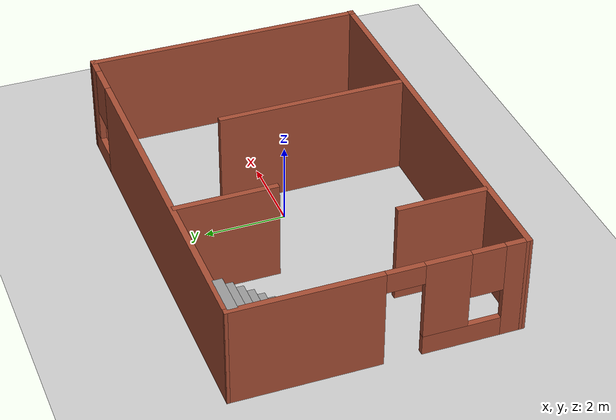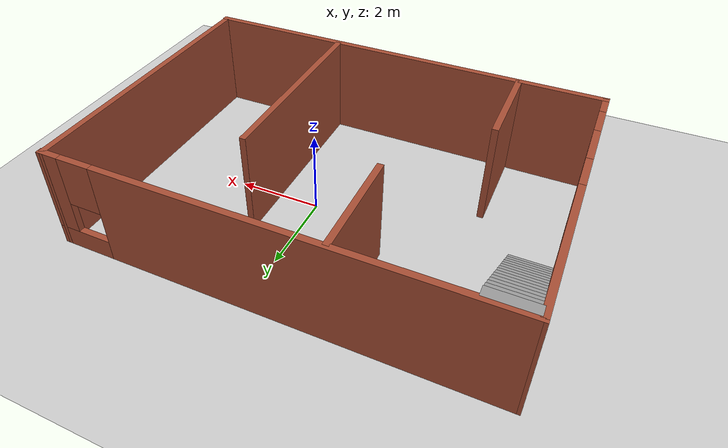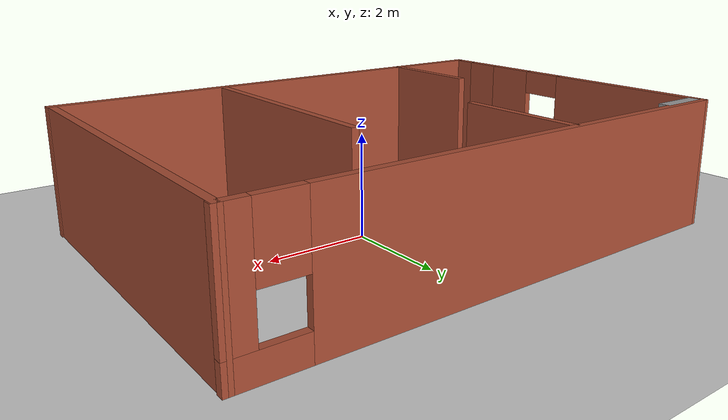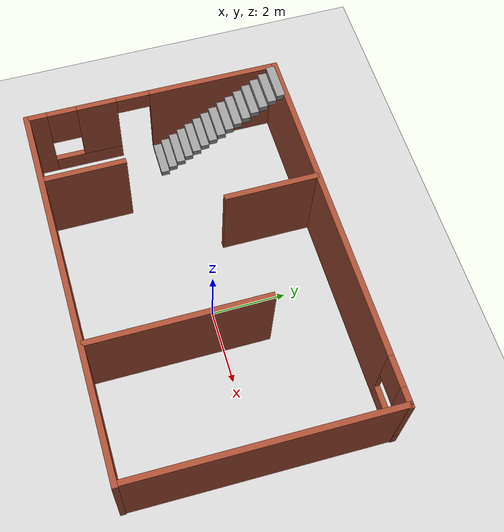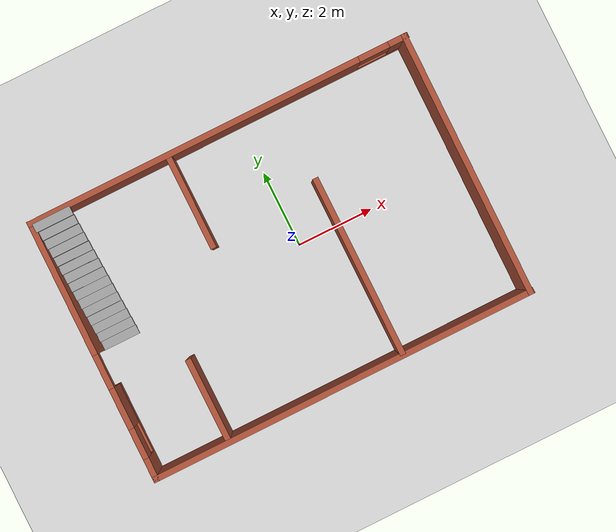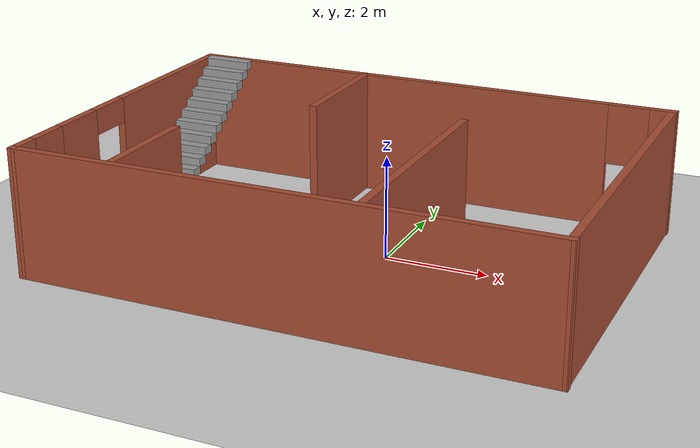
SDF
<sdf version="1.7">
 <world name="default">
  <light name="sun" type="directional">
   <pose>0 0 10 0 -0 0</pose>
   <diffuse>0.8 0.8 0.8 1</diffuse>
   <specular>0.2 0.2 0.2 1</specular>
   <attenuation>
    <range>1000</range>
    <constant>0.9</constant>
    <linear>0.01</linear>
    <quadratic>0.001</quadratic>
   </attenuation>
   <direction>-0.5 0.1 -0.9</direction>
   <spot><inner_angle>0</inner_angle><outer_angle>0</outer_angle><falloff>0</falloff></spot>
  </light>
  <model name="ground_plane">
   <static>1</static>
   <link name="link">
    <collision name="collision">
     <geometry><plane><normal>0 0 1</normal><size>100 100</size></plane></geometry>
     <surface>
      <contact><collide_bitmask>65535</collide_bitmask></contact>
      <friction><ode><mu>100</mu><mu2>50</mu2></ode></friction>
     </surface>
    </collision>
    <visual name="visual">
     <cast_shadows>0</cast_shadows>
     <geometry><plane><normal>0 0 1</normal><size>100 100</size></plane></geometry>
     <material>
      <script><uri>file://media/materials/scripts/gazebo.material</uri><name>Gazebo/Grey</name></script>
     </material>
    </visual>
   </link>
  </model>
  <gravity>0 0 -9.8</gravity>
  <magnetic_field>6e-06 2.3e-05 -4.2e-05</magnetic_field>
  <atmosphere type="adiabatic"/>
  <physics type="ode">
   <max_step_size>0.001</max_step_size>
   <real_time_factor>1</real_time_factor>
   <real_time_update_rate>1000</real_time_update_rate>
  </physics>
  <scene><ambient>0.4 0.4 0.4 1</ambient><background>0.7 0.7 0.7 1</background><shadows>1</shadows></scene>
  <spherical_coordinates>
   <surface_model>EARTH_WGS84</surface_model>
   <latitude_deg>0</latitude_deg>
   <longitude_deg>0</longitude_deg>
   <elevation>0</elevation>
   <heading_deg>0</heading_deg>
  </spherical_coordinates>
  <model name="complex_maze">
   <pose>-0.567728 -0.079374 0 0 -0 0</pose>
   <link name="Stairs_0">
    <visual name="Stairs_0_Visual_0">
     <pose>-4.49807 0.000507 0.083333 0 -0 -3.14159</pose>
     <geometry><box><size>1 0.233333 0.166667</size></box></geometry>
     <material>
      <script><uri>file://media/materials/scripts/gazebo.material</uri><name>Gazebo/Grey</name></script>
      <ambient>1 1 1 1</ambient>
     </material>
     <meta><layer>0</layer></meta>
    </visual>
    <collision name="Stairs_0_Collision_0">
     <geometry><box><size>1 0.233333 0.166667</size></box></geometry>
     <pose>-4.49807 0.000507 0.083333 0 -0 -3.14159</pose>
    </collision>
    <visual name="Stairs_0_Visual_1">
     <pose>-4.49807 0.23384 0.25 0 -0 -3.14159</pose>
     <geometry><box><size>1 0.233333 0.166667</size></box></geometry>
     <material>
      <script><uri>file://media/materials/scripts/gazebo.material</uri><name>Gazebo/Grey</name></script>
      <ambient>1 1 1 1</ambient>
     </material>
     <meta><layer>0</layer></meta>
    </visual>
    <collision name="Stairs_0_Collision_1">
     <geometry><box><size>1 0.233333 0.166667</size></box></geometry>
     <pose>-4.49807 0.23384 0.25 0 -0 -3.14159</pose>
    </collision>
    <visual name="Stairs_0_Visual_2">
     <pose>-4.49807 0.467174 0.416667 0 -0 -3.14159</pose>
     <geometry><box><size>1 0.233333 0.166667</size></box></geometry>
     <material>
      <script><uri>file://media/materials/scripts/gazebo.material</uri><name>Gazebo/Grey</name></script>
      <ambient>1 1 1 1</ambient>
     </material>
     <meta><layer>0</layer></meta>
    </visual>
    <collision name="Stairs_0_Collision_2">
     <geometry><box><size>1 0.233333 0.166667</size></box></geometry>
     <pose>-4.49807 0.467174 0.416667 0 -0 -3.14159</pose>
    </collision>
    <visual name="Stairs_0_Visual_3">
     <pose>-4.49807 0.700507 0.583333 0 -0 -3.14159</pose>
     <geometry><box><size>1 0.233333 0.166667</size></box></geometry>
     <material>
      <script><uri>file://media/materials/scripts/gazebo.material</uri><name>Gazebo/Grey</name></script>
      <ambient>1 1 1 1</ambient>
     </material>
     <meta><layer>0</layer></meta>
    </visual>
    <collision name="Stairs_0_Collision_3">
     <geometry><box><size>1 0.233333 0.166667</size></box></geometry>
     <pose>-4.49807 0.700507 0.583333 0 -0 -3.14159</pose>
    </collision>
    <visual name="Stairs_0_Visual_4">
     <pose>-4.49807 0.93384 0.75 0 -0 -3.14159</pose>
     <geometry><box><size>1 0.233333 0.166667</size></box></geometry>
     <material>
      <script><uri>file://media/materials/scripts/gazebo.material</uri><name>Gazebo/Grey</name></script>
      <ambient>1 1 1 1</ambient>
     </material>
     <meta><layer>0</layer></meta>
    </visual>
    <collision name="Stairs_0_Collision_4">
     <geometry><box><size>1 0.233333 0.166667</size></box></geometry>
     <pose>-4.49807 0.93384 0.75 0 -0 -3.14159</pose>
    </collision>
    <visual name="Stairs_0_Visual_5">
     <pose>-4.49807 1.16717 0.916667 0 -0 -3.14159</pose>
     <geometry><box><size>1 0.233333 0.166667</size></box></geometry>
     <material>
      <script><uri>file://media/materials/scripts/gazebo.material</uri><name>Gazebo/Grey</name></script>
      <ambient>1 1 1 1</ambient>
     </material>
     <meta><layer>0</layer></meta>
    </visual>
    <collision name="Stairs_0_Collision_5">
     <geometry><box><size>1 0.233333 0.166667</size></box></geometry>
     <pose>-4.49807 1.16717 0.916667 0 -0 -3.14159</pose>
    </collision>
    <visual name="Stairs_0_Visual_6">
     <pose>-4.49807 1.40051 1.08333 0 -0 -3.14159</pose>
     <geometry><box><size>1 0.233333 0.166667</size></box></geometry>
     <material>
      <script><uri>file://media/materials/scripts/gazebo.material</uri><name>Gazebo/Grey</name></script>
      <ambient>1 1 1 1</ambient>
     </material>
     <meta><layer>0</layer></meta>
    </visual>
    <collision name="Stairs_0_Collision_6">
     <geometry><box><size>1 0.233333 0.166667</size></box></geometry>
     <pose>-4.49807 1.40051 1.08333 0 -0 -3.14159</pose>
    </collision>
    <visual name="Stairs_0_Visual_7">
     <pose>-4.49807 1.63384 1.25 0 -0 -3.14159</pose>
     <geometry><box><size>1 0.233333 0.166667</size></box></geometry>
     <material>
      <script><uri>file://media/materials/scripts/gazebo.material</uri><name>Gazebo/Grey</name></script>
      <ambient>1 1 1 1</ambient>
     </material>
     <meta><layer>0</layer></meta>
    </visual>
    <collision name="Stairs_0_Collision_7">
     <geometry><box><size>1 0.233333 0.166667</size></box></geometry>
     <pose>-4.49807 1.63384 1.25 0 -0 -3.14159</pose>
    </collision>
    <visual name="Stairs_0_Visual_8">
     <pose>-4.49807 1.86717 1.41667 0 -0 -3.14159</pose>
     <geometry><box><size>1 0.233333 0.166667</size></box></geometry>
     <material>
      <script><uri>file://media/materials/scripts/gazebo.material</uri><name>Gazebo/Grey</name></script>
      <ambient>1 1 1 1</ambient>
     </material>
     <meta><layer>0</layer></meta>
    </visual>
    <collision name="Stairs_0_Collision_8">
     <geometry><box><size>1 0.233333 0.166667</size></box></geometry>
     <pose>-4.49807 1.86717 1.41667 0 -0 -3.14159</pose>
    </collision>
    <visual name="Stairs_0_Visual_9">
     <pose>-4.49807 2.10051 1.58333 0 -0 -3.14159</pose>
     <geometry><box><size>1 0.233333 0.166667</size></box></geometry>
     <material>
      <script><uri>file://media/materials/scripts/gazebo.material</uri><name>Gazebo/Grey</name></script>
      <ambient>1 1 1 1</ambient>
     </material>
     <meta><layer>0</layer></meta>
    </visual>
    <collision name="Stairs_0_Collision_9">
     <geometry><box><size>1 0.233333 0.166667</size></box></geometry>
     <pose>-4.49807 2.10051 1.58333 0 -0 -3.14159</pose>
    </collision>
    <visual name="Stairs_0_Visual_10">
     <pose>-4.49807 2.33384 1.75 0 -0 -3.14159</pose>
     <geometry><box><size>1 0.233333 0.166667</size></box></geometry>
     <material>
      <script><uri>file://media/materials/scripts/gazebo.material</uri><name>Gazebo/Grey</name></script>
      <ambient>1 1 1 1</ambient>
     </material>
     <meta><layer>0</layer></meta>
    </visual>
    <collision name="Stairs_0_Collision_10">
     <geometry><box><size>1 0.233333 0.166667</size></box></geometry>
     <pose>-4.49807 2.33384 1.75 0 -0 -3.14159</pose>
    </collision>
    <visual name="Stairs_0_Visual_11">
     <pose>-4.49807 2.56717 1.91667 0 -0 -3.14159</pose>
     <geometry><box><size>1 0.233333 0.166667</size></box></geometry>
     <material>
      <script><uri>file://media/materials/scripts/gazebo.material</uri><name>Gazebo/Grey</name></script>
      <ambient>1 1 1 1</ambient>
     </material>
     <meta><layer>0</layer></meta>
    </visual>
    <collision name="Stairs_0_Collision_11">
     <geometry><box><size>1 0.233333 0.166667</size></box></geometry>
     <pose>-4.49807 2.56717 1.91667 0 -0 -3.14159</pose>
    </collision>
    <visual name="Stairs_0_Visual_12">
     <pose>-4.49807 2.80051 2.08333 0 -0 -3.14159</pose>
     <geometry><box><size>1 0.233333 0.166667</size></box></geometry>
     <material>
      <script><uri>file://media/materials/scripts/gazebo.material</uri><name>Gazebo/Grey</name></script>
      <ambient>1 1 1 1</ambient>
     </material>
     <meta><layer>0</layer></meta>
    </visual>
    <collision name="Stairs_0_Collision_12">
     <geometry><box><size>1 0.233333 0.166667</size></box></geometry>
     <pose>-4.49807 2.80051 2.08333 0 -0 -3.14159</pose>
    </collision>
    <visual name="Stairs_0_Visual_13">
     <pose>-4.49807 3.03384 2.25 0 -0 -3.14159</pose>
     <geometry><box><size>1 0.233333 0.166667</size></box></geometry>
     <material>
      <script><uri>file://media/materials/scripts/gazebo.material</uri><name>Gazebo/Grey</name></script>
      <ambient>1 1 1 1</ambient>
     </material>
     <meta><layer>0</layer></meta>
    </visual>
    <collision name="Stairs_0_Collision_13">
     <geometry><box><size>1 0.233333 0.166667</size></box></geometry>
     <pose>-4.49807 3.03384 2.25 0 -0 -3.14159</pose>
    </collision>
    <visual name="Stairs_0_Visual_14">
     <pose>-4.49807 3.26717 2.41667 0 -0 -3.14159</pose>
     <geometry><box><size>1 0.233333 0.166667</size></box></geometry>
     <material>
      <script><uri>file://media/materials/scripts/gazebo.material</uri><name>Gazebo/Grey</name></script>
      <ambient>1 1 1 1</ambient>
     </material>
     <meta><layer>0</layer></meta>
    </visual>
    <collision name="Stairs_0_Collision_14">
     <geometry><box><size>1 0.233333 0.166667</size></box></geometry>
     <pose>-4.49807 3.26717 2.41667 0 -0 -3.14159</pose>
    </collision>
   </link>
   <link name="Wall_0">
    <pose>0.016762 3.42225 0 0 -0 0.001993</pose>
    <visual name="Wall_0_Visual_0">
     <pose>-0.663131 0 1.25 0 -0 0</pose>
     <geometry><box><size>8.91518 0.15 2.5</size></box></geometry>
     <material>
      <script><uri>file://media/materials/scripts/gazebo.material</uri><name>Gazebo/Bricks</name></script>
      <ambient>1 1 1 1</ambient>
     </material>
     <meta><layer>0</layer></meta>
    </visual>
    <collision name="Wall_0_Collision_0">
     <geometry><box><size>8.91518 0.15 2.5</size></box></geometry>
     <pose>-0.663131 0 1.25 0 -0 0</pose>
    </collision>
    <visual name="Wall_0_Visual_1">
     <pose>4.45759 0 0.25 0 -0 0</pose>
     <geometry><box><size>1.32626 0.15 0.5</size></box></geometry>
     <material>
      <script><uri>file://media/materials/scripts/gazebo.material</uri><name>Gazebo/Bricks</name></script>
      <ambient>1 1 1 1</ambient>
     </material>
     <meta><layer>0</layer></meta>
    </visual>
    <collision name="Wall_0_Collision_1">
     <geometry><box><size>1.32626 0.15 0.5</size></box></geometry>
     <pose>4.45759 0 0.25 0 -0 0</pose>
    </collision>
    <visual name="Wall_0_Visual_2">
     <pose>4.85759 0 1.5 0 -0 0</pose>
     <geometry><box><size>0.526262 0.15 2</size></box></geometry>
     <material>
      <script><uri>file://media/materials/scripts/gazebo.material</uri><name>Gazebo/Bricks</name></script>
      <ambient>1 1 1 1</ambient>
     </material>
     <meta><layer>0</layer></meta>
    </visual>
    <collision name="Wall_0_Collision_2">
     <geometry><box><size>0.526262 0.15 2</size></box></geometry>
     <pose>4.85759 0 1.5 0 -0 0</pose>
    </collision>
    <visual name="Wall_0_Visual_3">
     <pose>4.19446 0 1.9 0 -0 0</pose>
     <geometry><box><size>0.8 0.15 1.2</size></box></geometry>
     <material>
      <script><uri>file://media/materials/scripts/gazebo.material</uri><name>Gazebo/Bricks</name></script>
      <ambient>1 1 1 1</ambient>
     </material>
     <meta><layer>0</layer></meta>
    </visual>
    <collision name="Wall_0_Collision_3">
     <geometry><box><size>0.8 0.15 1.2</size></box></geometry>
     <pose>4.19446 0 1.9 0 -0 0</pose>
    </collision>
   </link>
   <link name="Wall_10">
    <collision name="Wall_10_Collision">
     <geometry><box><size>4.75 0.15 2.5</size></box></geometry>
     <pose>0 0 1.25 0 -0 0</pose>
    </collision>
    <visual name="Wall_10_Visual">
     <pose>0 0 1.25 0 -0 0</pose>
     <geometry><box><size>4.75 0.15 2.5</size></box></geometry>
     <material>
      <script><uri>file://media/materials/scripts/gazebo.material</uri><name>Gazebo/Bricks</name></script>
      <ambient>1 1 1 1</ambient>
     </material>
     <meta><layer>0</layer></meta>
    </visual>
    <pose>1.59634 -1.03421 0 0 -0 1.5708</pose>
   </link>
   <link name="Wall_2">
    <collision name="Wall_2_Collision">
     <geometry><box><size>6.99458 0.15 2.5</size></box></geometry>
     <pose>0 0 1.25 0 -0 0</pose>
    </collision>
    <visual name="Wall_2_Visual">
     <pose>0 0 1.25 0 -0 0</pose>
     <geometry><box><size>6.99458 0.15 2.5</size></box></geometry>
     <material>
      <script><uri>file://media/materials/scripts/gazebo.material</uri><name>Gazebo/Bricks</name></script>
      <ambient>1 1 1 1</ambient>
     </material>
     <meta><layer>0</layer></meta>
    </visual>
    <pose>5.02566 0.010057 0 0 -0 -1.57567</pose>
   </link>
   <link name="Wall_3">
    <collision name="Wall_3_Collision">
     <geometry><box><size>10.2414 0.15 2.5</size></box></geometry>
     <pose>0 0 1.25 0 -0 0</pose>
    </collision>
    <visual name="Wall_3_Visual">
     <pose>0 0 1.25 0 -0 0</pose>
     <geometry><box><size>10.2414 0.15 2.5</size></box></geometry>
     <material>
      <script><uri>file://media/materials/scripts/gazebo.material</uri><name>Gazebo/Bricks</name></script>
      <ambient>1 1 1 1</ambient>
     </material>
     <meta><layer>0</layer></meta>
    </visual>
    <pose>-0.016577 -3.42225 0 0 -0 -3.1396</pose>
   </link>
   <link name="Wall_4">
    <pose>-5.04559 -0.010057 0 0 -0 1.56593</pose>
    <visual name="Wall_4_Visual_0">
     <pose>-3.18831 0 1.25 0 -0 0</pose>
     <geometry><box><size>0.617958 0.15 2.5</size></box></geometry>
     <material>
      <script><uri>file://media/materials/scripts/gazebo.material</uri><name>Gazebo/Bricks</name></script>
      <ambient>1 1 1 1</ambient>
     </material>
     <meta><layer>0</layer></meta>
    </visual>
    <collision name="Wall_4_Collision_0">
     <geometry><box><size>0.617958 0.15 2.5</size></box></geometry>
     <pose>-3.18831 0 1.25 0 -0 0</pose>
    </collision>
    <visual name="Wall_4_Visual_1">
     <pose>1.69888 0 1.25 0 -0 0</pose>
     <geometry><box><size>3.59682 0.15 2.5</size></box></geometry>
     <material>
      <script><uri>file://media/materials/scripts/gazebo.material</uri><name>Gazebo/Bricks</name></script>
      <ambient>1 1 1 1</ambient>
     </material>
     <meta><layer>0</layer></meta>
    </visual>
    <collision name="Wall_4_Collision_1">
     <geometry><box><size>3.59682 0.15 2.5</size></box></geometry>
     <pose>1.69888 0 1.25 0 -0 0</pose>
    </collision>
    <visual name="Wall_4_Visual_2">
     <pose>-1.93943 0 0.25 0 -0 0</pose>
     <geometry><box><size>1.8798 0.15 0.5</size></box></geometry>
     <material>
      <script><uri>file://media/materials/scripts/gazebo.material</uri><name>Gazebo/Bricks</name></script>
      <ambient>1 1 1 1</ambient>
     </material>
     <meta><layer>0</layer></meta>
    </visual>
    <collision name="Wall_4_Collision_2">
     <geometry><box><size>1.8798 0.15 0.5</size></box></geometry>
     <pose>-1.93943 0 0.25 0 -0 0</pose>
    </collision>
    <visual name="Wall_4_Visual_3">
     <pose>-1.53943 0 1.5 0 -0 0</pose>
     <geometry><box><size>1.0798 0.15 2</size></box></geometry>
     <material>
      <script><uri>file://media/materials/scripts/gazebo.material</uri><name>Gazebo/Bricks</name></script>
      <ambient>1 1 1 1</ambient>
     </material>
     <meta><layer>0</layer></meta>
    </visual>
    <collision name="Wall_4_Collision_3">
     <geometry><box><size>1.0798 0.15 2</size></box></geometry>
     <pose>-1.53943 0 1.5 0 -0 0</pose>
    </collision>
    <visual name="Wall_4_Visual_4">
     <pose>-2.47933 0 1.9 0 -0 0</pose>
     <geometry><box><size>0.8 0.15 1.2</size></box></geometry>
     <material>
      <script><uri>file://media/materials/scripts/gazebo.material</uri><name>Gazebo/Bricks</name></script>
      <ambient>1 1 1 1</ambient>
     </material>
     <meta><layer>0</layer></meta>
    </visual>
    <collision name="Wall_4_Collision_4">
     <geometry><box><size>0.8 0.15 1.2</size></box></geometry>
     <pose>-2.47933 0 1.9 0 -0 0</pose>
    </collision>
    <visual name="Wall_4_Visual_5">
     <pose>-0.549532 0 2.25 0 -0 0</pose>
     <geometry><box><size>0.9 0.15 0.5</size></box></geometry>
     <material>
      <script><uri>file://media/materials/scripts/gazebo.material</uri><name>Gazebo/Bricks</name></script>
      <ambient>1 1 1 1</ambient>
     </material>
     <meta><layer>0</layer></meta>
    </visual>
    <collision name="Wall_4_Collision_5">
     <geometry><box><size>0.9 0.15 0.5</size></box></geometry>
     <pose>-0.549532 0 2.25 0 -0 0</pose>
    </collision>
   </link>
   <link name="Wall_6">
    <collision name="Wall_6_Collision">
     <geometry><box><size>2.25 0.15 2.5</size></box></geometry>
     <pose>0 0 1.25 0 -0 0</pose>
    </collision>
    <visual name="Wall_6_Visual">
     <pose>0 0 1.25 0 -0 0</pose>
     <geometry><box><size>2.25 0.15 2.5</size></box></geometry>
     <material>
      <script><uri>file://media/materials/scripts/gazebo.material</uri><name>Gazebo/Bricks</name></script>
      <ambient>1 1 1 1</ambient>
     </material>
     <meta><layer>0</layer></meta>
    </visual>
    <pose>-3.09012 -2.32444 0 0 -0 1.5708</pose>
   </link>
   <link name="Wall_8">
    <collision name="Wall_8_Collision">
     <geometry><box><size>2.5 0.15 2.5</size></box></geometry>
     <pose>0 0 1.25 0 -0 0</pose>
    </collision>
    <visual name="Wall_8_Visual">
     <pose>0 0 1.25 0 -0 0</pose>
     <geometry><box><size>2.5 0.15 2.5</size></box></geometry>
     <material>
      <script><uri>file://media/materials/scripts/gazebo.material</uri><name>Gazebo/Bricks</name></script>
      <ambient>1 1 1 1</ambient>
     </material>
     <meta><layer>0</layer></meta>
    </visual>
    <pose>-1.34024 2.16849 0 0 -0 -1.5708</pose>
   </link>
   <static>1</static>
  </model>
 </world>
</sdf>
